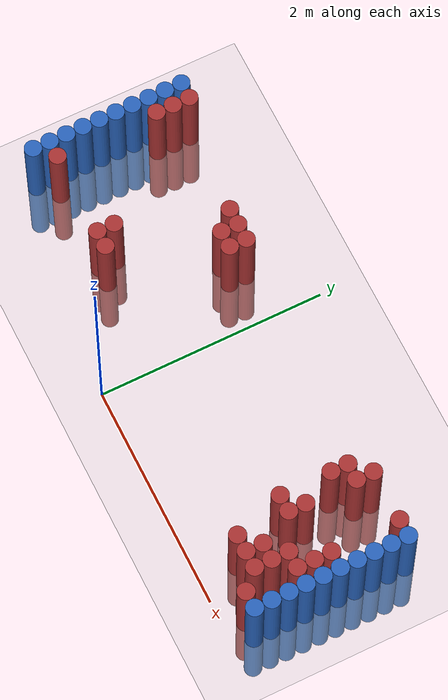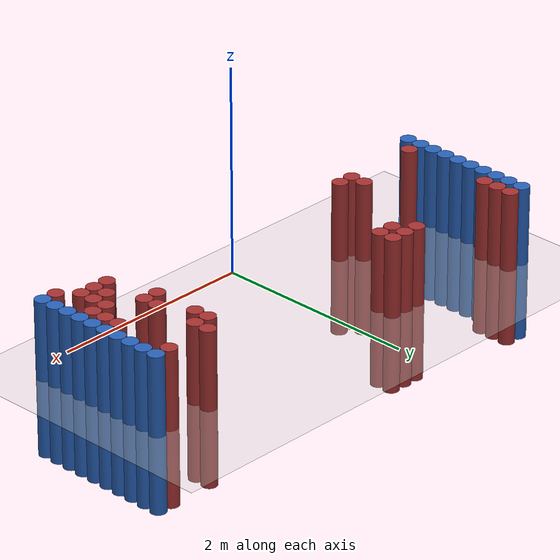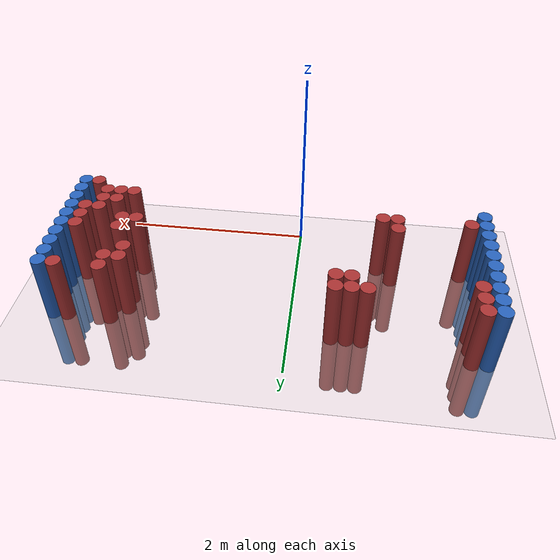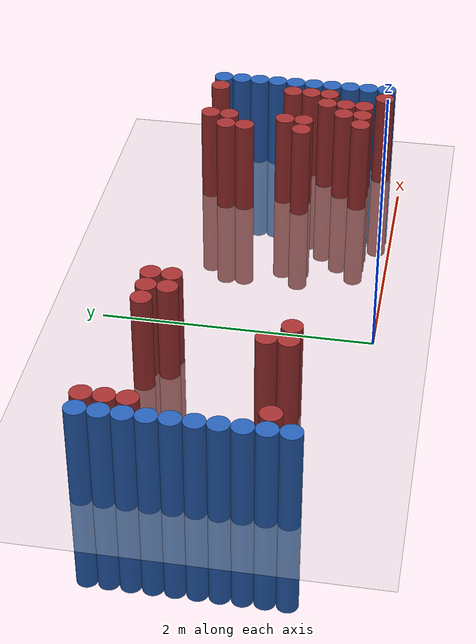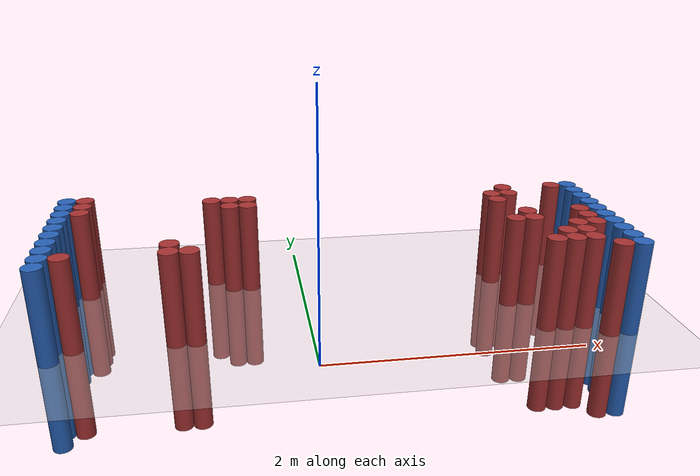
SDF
<sdf version="1.6">
 <world name="default">
  <model name="ground_plane">
   <static>1</static>
   <link name="link">
    <collision name="collision">
     <geometry><plane><normal>0 0 1</normal><size>100 100</size></plane></geometry>
     <surface><friction><ode><mu>100</mu><mu2>50</mu2></ode></friction></surface>
    </collision>
    <visual name="visual">
     <cast_shadows>0</cast_shadows>
     <geometry><plane><normal>0 0 1</normal><size>100 100</size></plane></geometry>
     <material>
      <script><uri>file://media/materials/scripts/gazebo.material</uri><name>Gazebo/Grey</name></script>
     </material>
    </visual>
   </link>
  </model>
  <model name="unit_cylinder_97">
   <static>1</static>
   <pose>-1.925000 0.325000 0.000000 0.000000 0.000000 0.000000</pose>
   <link name="link">
    <inertial>
     <mass>1</mass>
     <inertia><ixx>0.145833</ixx><ixy>0</ixy><ixz>0</ixz><iyy>0.145833</iyy><iyz>0</iyz><izz>0.125</izz></inertia>
    </inertial>
    <collision name="collision">
     <geometry><cylinder><radius>0.075000</radius><length>1.5</length></cylinder></geometry>
    </collision>
    <visual name="visual">
     <geometry><cylinder><radius>0.075000</radius><length>1.5</length></cylinder></geometry>
     <material>
      <ambient>0.152000 0.379000 0.720000 1</ambient>
      <diffuse>0.152000 0.379000 0.720000 1</diffuse>
     </material>
     <material>
      <script><name>Gazebo/Grey</name><uri>file://media/materials/scripts/gazebo.material</uri></script>
     </material>
    </visual>
   </link>
  </model>
  <model name="unit_cylinder_98">
   <static>1</static>
   <pose>-1.925000 0.475000 0.000000 0.000000 0.000000 0.000000</pose>
   <link name="link">
    <inertial>
     <mass>1</mass>
     <inertia><ixx>0.145833</ixx><ixy>0</ixy><ixz>0</ixz><iyy>0.145833</iyy><iyz>0</iyz><izz>0.125</izz></inertia>
    </inertial>
    <collision name="collision">
     <geometry><cylinder><radius>0.075000</radius><length>1.5</length></cylinder></geometry>
    </collision>
    <visual name="visual">
     <geometry><cylinder><radius>0.075000</radius><length>1.5</length></cylinder></geometry>
     <material>
      <ambient>0.152000 0.379000 0.720000 1</ambient>
      <diffuse>0.152000 0.379000 0.720000 1</diffuse>
     </material>
     <material>
      <script><name>Gazebo/Grey</name><uri>file://media/materials/scripts/gazebo.material</uri></script>
     </material>
    </visual>
   </link>
  </model>
  <model name="unit_cylinder_99">
   <static>1</static>
   <pose>-1.925000 0.625000 0.000000 0.000000 0.000000 0.000000</pose>
   <link name="link">
    <inertial>
     <mass>1</mass>
     <inertia><ixx>0.145833</ixx><ixy>0</ixy><ixz>0</ixz><iyy>0.145833</iyy><iyz>0</iyz><izz>0.125</izz></inertia>
    </inertial>
    <collision name="collision">
     <geometry><cylinder><radius>0.075000</radius><length>1.5</length></cylinder></geometry>
    </collision>
    <visual name="visual">
     <geometry><cylinder><radius>0.075000</radius><length>1.5</length></cylinder></geometry>
     <material>
      <ambient>0.152000 0.379000 0.720000 1</ambient>
      <diffuse>0.152000 0.379000 0.720000 1</diffuse>
     </material>
     <material>
      <script><name>Gazebo/Grey</name><uri>file://media/materials/scripts/gazebo.material</uri></script>
     </material>
    </visual>
   </link>
  </model>
  <model name="unit_cylinder_100">
   <static>1</static>
   <pose>-1.925000 0.775000 0.000000 0.000000 0.000000 0.000000</pose>
   <link name="link">
    <inertial>
     <mass>1</mass>
     <inertia><ixx>0.145833</ixx><ixy>0</ixy><ixz>0</ixz><iyy>0.145833</iyy><iyz>0</iyz><izz>0.125</izz></inertia>
    </inertial>
    <collision name="collision">
     <geometry><cylinder><radius>0.075000</radius><length>1.5</length></cylinder></geometry>
    </collision>
    <visual name="visual">
     <geometry><cylinder><radius>0.075000</radius><length>1.5</length></cylinder></geometry>
     <material>
      <ambient>0.152000 0.379000 0.720000 1</ambient>
      <diffuse>0.152000 0.379000 0.720000 1</diffuse>
     </material>
     <material>
      <script><name>Gazebo/Grey</name><uri>file://media/materials/scripts/gazebo.material</uri></script>
     </material>
    </visual>
   </link>
  </model>
  <model name="unit_cylinder_101">
   <static>1</static>
   <pose>-1.925000 0.925000 0.000000 0.000000 0.000000 0.000000</pose>
   <link name="link">
    <inertial>
     <mass>1</mass>
     <inertia><ixx>0.145833</ixx><ixy>0</ixy><ixz>0</ixz><iyy>0.145833</iyy><iyz>0</iyz><izz>0.125</izz></inertia>
    </inertial>
    <collision name="collision">
     <geometry><cylinder><radius>0.075000</radius><length>1.5</length></cylinder></geometry>
    </collision>
    <visual name="visual">
     <geometry><cylinder><radius>0.075000</radius><length>1.5</length></cylinder></geometry>
     <material>
      <ambient>0.152000 0.379000 0.720000 1</ambient>
      <diffuse>0.152000 0.379000 0.720000 1</diffuse>
     </material>
     <material>
      <script><name>Gazebo/Grey</name><uri>file://media/materials/scripts/gazebo.material</uri></script>
     </material>
    </visual>
   </link>
  </model>
  <model name="unit_cylinder_102">
   <static>1</static>
   <pose>-1.925000 1.075000 0.000000 0.000000 0.000000 0.000000</pose>
   <link name="link">
    <inertial>
     <mass>1</mass>
     <inertia><ixx>0.145833</ixx><ixy>0</ixy><ixz>0</ixz><iyy>0.145833</iyy><iyz>0</iyz><izz>0.125</izz></inertia>
    </inertial>
    <collision name="collision">
     <geometry><cylinder><radius>0.075000</radius><length>1.5</length></cylinder></geometry>
    </collision>
    <visual name="visual">
     <geometry><cylinder><radius>0.075000</radius><length>1.5</length></cylinder></geometry>
     <material>
      <ambient>0.152000 0.379000 0.720000 1</ambient>
      <diffuse>0.152000 0.379000 0.720000 1</diffuse>
     </material>
     <material>
      <script><name>Gazebo/Grey</name><uri>file://media/materials/scripts/gazebo.material</uri></script>
     </material>
    </visual>
   </link>
  </model>
  <model name="unit_cylinder_103">
   <static>1</static>
   <pose>-1.925000 1.225000 0.000000 0.000000 0.000000 0.000000</pose>
   <link name="link">
    <inertial>
     <mass>1</mass>
     <inertia><ixx>0.145833</ixx><ixy>0</ixy><ixz>0</ixz><iyy>0.145833</iyy><iyz>0</iyz><izz>0.125</izz></inertia>
    </inertial>
    <collision name="collision">
     <geometry><cylinder><radius>0.075000</radius><length>1.5</length></cylinder></geometry>
    </collision>
    <visual name="visual">
     <geometry><cylinder><radius>0.075000</radius><length>1.5</length></cylinder></geometry>
     <material>
      <ambient>0.152000 0.379000 0.720000 1</ambient>
      <diffuse>0.152000 0.379000 0.720000 1</diffuse>
     </material>
     <material>
      <script><name>Gazebo/Grey</name><uri>file://media/materials/scripts/gazebo.material</uri></script>
     </material>
    </visual>
   </link>
  </model>
  <model name="unit_cylinder_104">
   <static>1</static>
   <pose>-1.925000 1.375000 0.000000 0.000000 0.000000 0.000000</pose>
   <link name="link">
    <inertial>
     <mass>1</mass>
     <inertia><ixx>0.145833</ixx><ixy>0</ixy><ixz>0</ixz><iyy>0.145833</iyy><iyz>0</iyz><izz>0.125</izz></inertia>
    </inertial>
    <collision name="collision">
     <geometry><cylinder><radius>0.075000</radius><length>1.5</length></cylinder></geometry>
    </collision>
    <visual name="visual">
     <geometry><cylinder><radius>0.075000</radius><length>1.5</length></cylinder></geometry>
     <material>
      <ambient>0.152000 0.379000 0.720000 1</ambient>
      <diffuse>0.152000 0.379000 0.720000 1</diffuse>
     </material>
     <material>
      <script><name>Gazebo/Grey</name><uri>file://media/materials/scripts/gazebo.material</uri></script>
     </material>
    </visual>
   </link>
  </model>
  <model name="unit_cylinder_105">
   <static>1</static>
   <pose>-1.925000 1.525000 0.000000 0.000000 0.000000 0.000000</pose>
   <link name="link">
    <inertial>
     <mass>1</mass>
     <inertia><ixx>0.145833</ixx><ixy>0</ixy><ixz>0</ixz><iyy>0.145833</iyy><iyz>0</iyz><izz>0.125</izz></inertia>
    </inertial>
    <collision name="collision">
     <geometry><cylinder><radius>0.075000</radius><length>1.5</length></cylinder></geometry>
    </collision>
    <visual name="visual">
     <geometry><cylinder><radius>0.075000</radius><length>1.5</length></cylinder></geometry>
     <material>
      <ambient>0.152000 0.379000 0.720000 1</ambient>
      <diffuse>0.152000 0.379000 0.720000 1</diffuse>
     </material>
     <material>
      <script><name>Gazebo/Grey</name><uri>file://media/materials/scripts/gazebo.material</uri></script>
     </material>
    </visual>
   </link>
  </model>
  <model name="unit_cylinder_106">
   <static>1</static>
   <pose>-1.925000 1.675000 0.000000 0.000000 0.000000 0.000000</pose>
   <link name="link">
    <inertial>
     <mass>1</mass>
     <inertia><ixx>0.145833</ixx><ixy>0</ixy><ixz>0</ixz><iyy>0.145833</iyy><iyz>0</iyz><izz>0.125</izz></inertia>
    </inertial>
    <collision name="collision">
     <geometry><cylinder><radius>0.075000</radius><length>1.5</length></cylinder></geometry>
    </collision>
    <visual name="visual">
     <geometry><cylinder><radius>0.075000</radius><length>1.5</length></cylinder></geometry>
     <material>
      <ambient>0.152000 0.379000 0.720000 1</ambient>
      <diffuse>0.152000 0.379000 0.720000 1</diffuse>
     </material>
     <material>
      <script><name>Gazebo/Grey</name><uri>file://media/materials/scripts/gazebo.material</uri></script>
     </material>
    </visual>
   </link>
  </model>
  <model name="unit_cylinder_126">
   <static>1</static>
   <pose>-1.775000 0.475000 0.000000 0.000000 0.000000 0.000000</pose>
   <link name="link">
    <inertial>
     <mass>1</mass>
     <inertia><ixx>0.145833</ixx><ixy>0</ixy><ixz>0</ixz><iyy>0.145833</iyy><iyz>0</iyz><izz>0.125</izz></inertia>
    </inertial>
    <collision name="collision">
     <geometry><cylinder><radius>0.075000</radius><length>1.5</length></cylinder></geometry>
    </collision>
    <visual name="visual">
     <geometry><cylinder><radius>0.075000</radius><length>1.5</length></cylinder></geometry>
     <material>
      <ambient>0.648000 0.192000 0.192000 1</ambient>
      <diffuse>0.648000 0.192000 0.192000 1</diffuse>
     </material>
     <material>
      <script><name>Gazebo/Grey</name><uri>file://media/materials/scripts/gazebo.material</uri></script>
     </material>
    </visual>
   </link>
  </model>
  <model name="unit_cylinder_127">
   <static>1</static>
   <pose>-1.775000 1.375000 0.000000 0.000000 0.000000 0.000000</pose>
   <link name="link">
    <inertial>
     <mass>1</mass>
     <inertia><ixx>0.145833</ixx><ixy>0</ixy><ixz>0</ixz><iyy>0.145833</iyy><iyz>0</iyz><izz>0.125</izz></inertia>
    </inertial>
    <collision name="collision">
     <geometry><cylinder><radius>0.075000</radius><length>1.5</length></cylinder></geometry>
    </collision>
    <visual name="visual">
     <geometry><cylinder><radius>0.075000</radius><length>1.5</length></cylinder></geometry>
     <material>
      <ambient>0.648000 0.192000 0.192000 1</ambient>
      <diffuse>0.648000 0.192000 0.192000 1</diffuse>
     </material>
     <material>
      <script><name>Gazebo/Grey</name><uri>file://media/materials/scripts/gazebo.material</uri></script>
     </material>
    </visual>
   </link>
  </model>
  <model name="unit_cylinder_128">
   <static>1</static>
   <pose>-1.775000 1.525000 0.000000 0.000000 0.000000 0.000000</pose>
   <link name="link">
    <inertial>
     <mass>1</mass>
     <inertia><ixx>0.145833</ixx><ixy>0</ixy><ixz>0</ixz><iyy>0.145833</iyy><iyz>0</iyz><izz>0.125</izz></inertia>
    </inertial>
    <collision name="collision">
     <geometry><cylinder><radius>0.075000</radius><length>1.5</length></cylinder></geometry>
    </collision>
    <visual name="visual">
     <geometry><cylinder><radius>0.075000</radius><length>1.5</length></cylinder></geometry>
     <material>
      <ambient>0.648000 0.192000 0.192000 1</ambient>
      <diffuse>0.648000 0.192000 0.192000 1</diffuse>
     </material>
     <material>
      <script><name>Gazebo/Grey</name><uri>file://media/materials/scripts/gazebo.material</uri></script>
     </material>
    </visual>
   </link>
  </model>
  <model name="unit_cylinder_129">
   <static>1</static>
   <pose>-1.775000 1.675000 0.000000 0.000000 0.000000 0.000000</pose>
   <link name="link">
    <inertial>
     <mass>1</mass>
     <inertia><ixx>0.145833</ixx><ixy>0</ixy><ixz>0</ixz><iyy>0.145833</iyy><iyz>0</iyz><izz>0.125</izz></inertia>
    </inertial>
    <collision name="collision">
     <geometry><cylinder><radius>0.075000</radius><length>1.5</length></cylinder></geometry>
    </collision>
    <visual name="visual">
     <geometry><cylinder><radius>0.075000</radius><length>1.5</length></cylinder></geometry>
     <material>
      <ambient>0.648000 0.192000 0.192000 1</ambient>
      <diffuse>0.648000 0.192000 0.192000 1</diffuse>
     </material>
     <material>
      <script><name>Gazebo/Grey</name><uri>file://media/materials/scripts/gazebo.material</uri></script>
     </material>
    </visual>
   </link>
  </model>
  <model name="unit_cylinder_161">
   <static>1</static>
   <pose>-1.025000 0.475000 0.000000 0.000000 0.000000 0.000000</pose>
   <link name="link">
    <inertial>
     <mass>1</mass>
     <inertia><ixx>0.145833</ixx><ixy>0</ixy><ixz>0</ixz><iyy>0.145833</iyy><iyz>0</iyz><izz>0.125</izz></inertia>
    </inertial>
    <collision name="collision">
     <geometry><cylinder><radius>0.075000</radius><length>1.5</length></cylinder></geometry>
    </collision>
    <visual name="visual">
     <geometry><cylinder><radius>0.075000</radius><length>1.5</length></cylinder></geometry>
     <material>
      <ambient>0.648000 0.192000 0.192000 1</ambient>
      <diffuse>0.648000 0.192000 0.192000 1</diffuse>
     </material>
     <material>
      <script><name>Gazebo/Grey</name><uri>file://media/materials/scripts/gazebo.material</uri></script>
     </material>
    </visual>
   </link>
  </model>
  <model name="unit_cylinder_162">
   <static>1</static>
   <pose>-1.025000 0.625000 0.000000 0.000000 0.000000 0.000000</pose>
   <link name="link">
    <inertial>
     <mass>1</mass>
     <inertia><ixx>0.145833</ixx><ixy>0</ixy><ixz>0</ixz><iyy>0.145833</iyy><iyz>0</iyz><izz>0.125</izz></inertia>
    </inertial>
    <collision name="collision">
     <geometry><cylinder><radius>0.075000</radius><length>1.5</length></cylinder></geometry>
    </collision>
    <visual name="visual">
     <geometry><cylinder><radius>0.075000</radius><length>1.5</length></cylinder></geometry>
     <material>
      <ambient>0.648000 0.192000 0.192000 1</ambient>
      <diffuse>0.648000 0.192000 0.192000 1</diffuse>
     </material>
     <material>
      <script><name>Gazebo/Grey</name><uri>file://media/materials/scripts/gazebo.material</uri></script>
     </material>
    </visual>
   </link>
  </model>
  <model name="unit_cylinder_171">
   <static>1</static>
   <pose>-0.875000 0.475000 0.000000 0.000000 0.000000 0.000000</pose>
   <link name="link">
    <inertial>
     <mass>1</mass>
     <inertia><ixx>0.145833</ixx><ixy>0</ixy><ixz>0</ixz><iyy>0.145833</iyy><iyz>0</iyz><izz>0.125</izz></inertia>
    </inertial>
    <collision name="collision">
     <geometry><cylinder><radius>0.075000</radius><length>1.5</length></cylinder></geometry>
    </collision>
    <visual name="visual">
     <geometry><cylinder><radius>0.075000</radius><length>1.5</length></cylinder></geometry>
     <material>
      <ambient>0.648000 0.192000 0.192000 1</ambient>
      <diffuse>0.648000 0.192000 0.192000 1</diffuse>
     </material>
     <material>
      <script><name>Gazebo/Grey</name><uri>file://media/materials/scripts/gazebo.material</uri></script>
     </material>
    </visual>
   </link>
  </model>
  <model name="unit_cylinder_178">
   <static>1</static>
   <pose>-0.725000 1.525000 0.000000 0.000000 0.000000 0.000000</pose>
   <link name="link">
    <inertial>
     <mass>1</mass>
     <inertia><ixx>0.145833</ixx><ixy>0</ixy><ixz>0</ixz><iyy>0.145833</iyy><iyz>0</iyz><izz>0.125</izz></inertia>
    </inertial>
    <collision name="collision">
     <geometry><cylinder><radius>0.075000</radius><length>1.5</length></cylinder></geometry>
    </collision>
    <visual name="visual">
     <geometry><cylinder><radius>0.075000</radius><length>1.5</length></cylinder></geometry>
     <material>
      <ambient>0.648000 0.192000 0.192000 1</ambient>
      <diffuse>0.648000 0.192000 0.192000 1</diffuse>
     </material>
     <material>
      <script><name>Gazebo/Grey</name><uri>file://media/materials/scripts/gazebo.material</uri></script>
     </material>
    </visual>
   </link>
  </model>
  <model name="unit_cylinder_183">
   <static>1</static>
   <pose>-0.575000 1.375000 0.000000 0.000000 0.000000 0.000000</pose>
   <link name="link">
    <inertial>
     <mass>1</mass>
     <inertia><ixx>0.145833</ixx><ixy>0</ixy><ixz>0</ixz><iyy>0.145833</iyy><iyz>0</iyz><izz>0.125</izz></inertia>
    </inertial>
    <collision name="collision">
     <geometry><cylinder><radius>0.075000</radius><length>1.5</length></cylinder></geometry>
    </collision>
    <visual name="visual">
     <geometry><cylinder><radius>0.075000</radius><length>1.5</length></cylinder></geometry>
     <material>
      <ambient>0.648000 0.192000 0.192000 1</ambient>
      <diffuse>0.648000 0.192000 0.192000 1</diffuse>
     </material>
     <material>
      <script><name>Gazebo/Grey</name><uri>file://media/materials/scripts/gazebo.material</uri></script>
     </material>
    </visual>
   </link>
  </model>
  <model name="unit_cylinder_184">
   <static>1</static>
   <pose>-0.575000 1.525000 0.000000 0.000000 0.000000 0.000000</pose>
   <link name="link">
    <inertial>
     <mass>1</mass>
     <inertia><ixx>0.145833</ixx><ixy>0</ixy><ixz>0</ixz><iyy>0.145833</iyy><iyz>0</iyz><izz>0.125</izz></inertia>
    </inertial>
    <collision name="collision">
     <geometry><cylinder><radius>0.075000</radius><length>1.5</length></cylinder></geometry>
    </collision>
    <visual name="visual">
     <geometry><cylinder><radius>0.075000</radius><length>1.5</length></cylinder></geometry>
     <material>
      <ambient>0.648000 0.192000 0.192000 1</ambient>
      <diffuse>0.648000 0.192000 0.192000 1</diffuse>
     </material>
     <material>
      <script><name>Gazebo/Grey</name><uri>file://media/materials/scripts/gazebo.material</uri></script>
     </material>
    </visual>
   </link>
  </model>
  <model name="unit_cylinder_186">
   <static>1</static>
   <pose>-0.425000 1.375000 0.000000 0.000000 0.000000 0.000000</pose>
   <link name="link">
    <inertial>
     <mass>1</mass>
     <inertia><ixx>0.145833</ixx><ixy>0</ixy><ixz>0</ixz><iyy>0.145833</iyy><iyz>0</iyz><izz>0.125</izz></inertia>
    </inertial>
    <collision name="collision">
     <geometry><cylinder><radius>0.075000</radius><length>1.5</length></cylinder></geometry>
    </collision>
    <visual name="visual">
     <geometry><cylinder><radius>0.075000</radius><length>1.5</length></cylinder></geometry>
     <material>
      <ambient>0.648000 0.192000 0.192000 1</ambient>
      <diffuse>0.648000 0.192000 0.192000 1</diffuse>
     </material>
     <material>
      <script><name>Gazebo/Grey</name><uri>file://media/materials/scripts/gazebo.material</uri></script>
     </material>
    </visual>
   </link>
  </model>
  <model name="unit_cylinder_187">
   <static>1</static>
   <pose>-0.425000 1.525000 0.000000 0.000000 0.000000 0.000000</pose>
   <link name="link">
    <inertial>
     <mass>1</mass>
     <inertia><ixx>0.145833</ixx><ixy>0</ixy><ixz>0</ixz><iyy>0.145833</iyy><iyz>0</iyz><izz>0.125</izz></inertia>
    </inertial>
    <collision name="collision">
     <geometry><cylinder><radius>0.075000</radius><length>1.5</length></cylinder></geometry>
    </collision>
    <visual name="visual">
     <geometry><cylinder><radius>0.075000</radius><length>1.5</length></cylinder></geometry>
     <material>
      <ambient>0.648000 0.192000 0.192000 1</ambient>
      <diffuse>0.648000 0.192000 0.192000 1</diffuse>
     </material>
     <material>
      <script><name>Gazebo/Grey</name><uri>file://media/materials/scripts/gazebo.material</uri></script>
     </material>
    </visual>
   </link>
  </model>
  <model name="unit_cylinder_211">
   <static>1</static>
   <pose>1.675000 0.775000 0.000000 0.000000 0.000000 0.000000</pose>
   <link name="link">
    <inertial>
     <mass>1</mass>
     <inertia><ixx>0.145833</ixx><ixy>0</ixy><ixz>0</ixz><iyy>0.145833</iyy><iyz>0</iyz><izz>0.125</izz></inertia>
    </inertial>
    <collision name="collision">
     <geometry><cylinder><radius>0.075000</radius><length>1.5</length></cylinder></geometry>
    </collision>
    <visual name="visual">
     <geometry><cylinder><radius>0.075000</radius><length>1.5</length></cylinder></geometry>
     <material>
      <ambient>0.648000 0.192000 0.192000 1</ambient>
      <diffuse>0.648000 0.192000 0.192000 1</diffuse>
     </material>
     <material>
      <script><name>Gazebo/Grey</name><uri>file://media/materials/scripts/gazebo.material</uri></script>
     </material>
    </visual>
   </link>
  </model>
  <model name="unit_cylinder_212">
   <static>1</static>
   <pose>1.675000 1.225000 0.000000 0.000000 0.000000 0.000000</pose>
   <link name="link">
    <inertial>
     <mass>1</mass>
     <inertia><ixx>0.145833</ixx><ixy>0</ixy><ixz>0</ixz><iyy>0.145833</iyy><iyz>0</iyz><izz>0.125</izz></inertia>
    </inertial>
    <collision name="collision">
     <geometry><cylinder><radius>0.075000</radius><length>1.5</length></cylinder></geometry>
    </collision>
    <visual name="visual">
     <geometry><cylinder><radius>0.075000</radius><length>1.5</length></cylinder></geometry>
     <material>
      <ambient>0.648000 0.192000 0.192000 1</ambient>
      <diffuse>0.648000 0.192000 0.192000 1</diffuse>
     </material>
     <material>
      <script><name>Gazebo/Grey</name><uri>file://media/materials/scripts/gazebo.material</uri></script>
     </material>
    </visual>
   </link>
  </model>
  <model name="unit_cylinder_213">
   <static>1</static>
   <pose>1.675000 1.375000 0.000000 0.000000 0.000000 0.000000</pose>
   <link name="link">
    <inertial>
     <mass>1</mass>
     <inertia><ixx>0.145833</ixx><ixy>0</ixy><ixz>0</ixz><iyy>0.145833</iyy><iyz>0</iyz><izz>0.125</izz></inertia>
    </inertial>
    <collision name="collision">
     <geometry><cylinder><radius>0.075000</radius><length>1.5</length></cylinder></geometry>
    </collision>
    <visual name="visual">
     <geometry><cylinder><radius>0.075000</radius><length>1.5</length></cylinder></geometry>
     <material>
      <ambient>0.648000 0.192000 0.192000 1</ambient>
      <diffuse>0.648000 0.192000 0.192000 1</diffuse>
     </material>
     <material>
      <script><name>Gazebo/Grey</name><uri>file://media/materials/scripts/gazebo.material</uri></script>
     </material>
    </visual>
   </link>
  </model>
  <model name="unit_cylinder_222">
   <static>1</static>
   <pose>1.825000 0.325000 0.000000 0.000000 0.000000 0.000000</pose>
   <link name="link">
    <inertial>
     <mass>1</mass>
     <inertia><ixx>0.145833</ixx><ixy>0</ixy><ixz>0</ixz><iyy>0.145833</iyy><iyz>0</iyz><izz>0.125</izz></inertia>
    </inertial>
    <collision name="collision">
     <geometry><cylinder><radius>0.075000</radius><length>1.5</length></cylinder></geometry>
    </collision>
    <visual name="visual">
     <geometry><cylinder><radius>0.075000</radius><length>1.5</length></cylinder></geometry>
     <material>
      <ambient>0.648000 0.192000 0.192000 1</ambient>
      <diffuse>0.648000 0.192000 0.192000 1</diffuse>
     </material>
     <material>
      <script><name>Gazebo/Grey</name><uri>file://media/materials/scripts/gazebo.material</uri></script>
     </material>
    </visual>
   </link>
  </model>
  <model name="unit_cylinder_223">
   <static>1</static>
   <pose>1.825000 0.775000 0.000000 0.000000 0.000000 0.000000</pose>
   <link name="link">
    <inertial>
     <mass>1</mass>
     <inertia><ixx>0.145833</ixx><ixy>0</ixy><ixz>0</ixz><iyy>0.145833</iyy><iyz>0</iyz><izz>0.125</izz></inertia>
    </inertial>
    <collision name="collision">
     <geometry><cylinder><radius>0.075000</radius><length>1.5</length></cylinder></geometry>
    </collision>
    <visual name="visual">
     <geometry><cylinder><radius>0.075000</radius><length>1.5</length></cylinder></geometry>
     <material>
      <ambient>0.648000 0.192000 0.192000 1</ambient>
      <diffuse>0.648000 0.192000 0.192000 1</diffuse>
     </material>
     <material>
      <script><name>Gazebo/Grey</name><uri>file://media/materials/scripts/gazebo.material</uri></script>
     </material>
    </visual>
   </link>
  </model>
  <model name="unit_cylinder_224">
   <static>1</static>
   <pose>1.825000 0.925000 0.000000 0.000000 0.000000 0.000000</pose>
   <link name="link">
    <inertial>
     <mass>1</mass>
     <inertia><ixx>0.145833</ixx><ixy>0</ixy><ixz>0</ixz><iyy>0.145833</iyy><iyz>0</iyz><izz>0.125</izz></inertia>
    </inertial>
    <collision name="collision">
     <geometry><cylinder><radius>0.075000</radius><length>1.5</length></cylinder></geometry>
    </collision>
    <visual name="visual">
     <geometry><cylinder><radius>0.075000</radius><length>1.5</length></cylinder></geometry>
     <material>
      <ambient>0.648000 0.192000 0.192000 1</ambient>
      <diffuse>0.648000 0.192000 0.192000 1</diffuse>
     </material>
     <material>
      <script><name>Gazebo/Grey</name><uri>file://media/materials/scripts/gazebo.material</uri></script>
     </material>
    </visual>
   </link>
  </model>
  <model name="unit_cylinder_225">
   <static>1</static>
   <pose>1.825000 1.375000 0.000000 0.000000 0.000000 0.000000</pose>
   <link name="link">
    <inertial>
     <mass>1</mass>
     <inertia><ixx>0.145833</ixx><ixy>0</ixy><ixz>0</ixz><iyy>0.145833</iyy><iyz>0</iyz><izz>0.125</izz></inertia>
    </inertial>
    <collision name="collision">
     <geometry><cylinder><radius>0.075000</radius><length>1.5</length></cylinder></geometry>
    </collision>
    <visual name="visual">
     <geometry><cylinder><radius>0.075000</radius><length>1.5</length></cylinder></geometry>
     <material>
      <ambient>0.648000 0.192000 0.192000 1</ambient>
      <diffuse>0.648000 0.192000 0.192000 1</diffuse>
     </material>
     <material>
      <script><name>Gazebo/Grey</name><uri>file://media/materials/scripts/gazebo.material</uri></script>
     </material>
    </visual>
   </link>
  </model>
  <model name="unit_cylinder_226">
   <static>1</static>
   <pose>1.825000 1.525000 0.000000 0.000000 0.000000 0.000000</pose>
   <link name="link">
    <inertial>
     <mass>1</mass>
     <inertia><ixx>0.145833</ixx><ixy>0</ixy><ixz>0</ixz><iyy>0.145833</iyy><iyz>0</iyz><izz>0.125</izz></inertia>
    </inertial>
    <collision name="collision">
     <geometry><cylinder><radius>0.075000</radius><length>1.5</length></cylinder></geometry>
    </collision>
    <visual name="visual">
     <geometry><cylinder><radius>0.075000</radius><length>1.5</length></cylinder></geometry>
     <material>
      <ambient>0.648000 0.192000 0.192000 1</ambient>
      <diffuse>0.648000 0.192000 0.192000 1</diffuse>
     </material>
     <material>
      <script><name>Gazebo/Grey</name><uri>file://media/materials/scripts/gazebo.material</uri></script>
     </material>
    </visual>
   </link>
  </model>
  <model name="unit_cylinder_238">
   <static>1</static>
   <pose>1.975000 0.325000 0.000000 0.000000 0.000000 0.000000</pose>
   <link name="link">
    <inertial>
     <mass>1</mass>
     <inertia><ixx>0.145833</ixx><ixy>0</ixy><ixz>0</ixz><iyy>0.145833</iyy><iyz>0</iyz><izz>0.125</izz></inertia>
    </inertial>
    <collision name="collision">
     <geometry><cylinder><radius>0.075000</radius><length>1.5</length></cylinder></geometry>
    </collision>
    <visual name="visual">
     <geometry><cylinder><radius>0.075000</radius><length>1.5</length></cylinder></geometry>
     <material>
      <ambient>0.648000 0.192000 0.192000 1</ambient>
      <diffuse>0.648000 0.192000 0.192000 1</diffuse>
     </material>
     <material>
      <script><name>Gazebo/Grey</name><uri>file://media/materials/scripts/gazebo.material</uri></script>
     </material>
    </visual>
   </link>
  </model>
  <model name="unit_cylinder_239">
   <static>1</static>
   <pose>1.975000 0.475000 0.000000 0.000000 0.000000 0.000000</pose>
   <link name="link">
    <inertial>
     <mass>1</mass>
     <inertia><ixx>0.145833</ixx><ixy>0</ixy><ixz>0</ixz><iyy>0.145833</iyy><iyz>0</iyz><izz>0.125</izz></inertia>
    </inertial>
    <collision name="collision">
     <geometry><cylinder><radius>0.075000</radius><length>1.5</length></cylinder></geometry>
    </collision>
    <visual name="visual">
     <geometry><cylinder><radius>0.075000</radius><length>1.5</length></cylinder></geometry>
     <material>
      <ambient>0.648000 0.192000 0.192000 1</ambient>
      <diffuse>0.648000 0.192000 0.192000 1</diffuse>
     </material>
     <material>
      <script><name>Gazebo/Grey</name><uri>file://media/materials/scripts/gazebo.material</uri></script>
     </material>
    </visual>
   </link>
  </model>
  <model name="unit_cylinder_248">
   <static>1</static>
   <pose>2.125000 0.325000 0.000000 0.000000 0.000000 0.000000</pose>
   <link name="link">
    <inertial>
     <mass>1</mass>
     <inertia><ixx>0.145833</ixx><ixy>0</ixy><ixz>0</ixz><iyy>0.145833</iyy><iyz>0</iyz><izz>0.125</izz></inertia>
    </inertial>
    <collision name="collision">
     <geometry><cylinder><radius>0.075000</radius><length>1.5</length></cylinder></geometry>
    </collision>
    <visual name="visual">
     <geometry><cylinder><radius>0.075000</radius><length>1.5</length></cylinder></geometry>
     <material>
      <ambient>0.648000 0.192000 0.192000 1</ambient>
      <diffuse>0.648000 0.192000 0.192000 1</diffuse>
     </material>
     <material>
      <script><name>Gazebo/Grey</name><uri>file://media/materials/scripts/gazebo.material</uri></script>
     </material>
    </visual>
   </link>
  </model>
  <model name="unit_cylinder_249">
   <static>1</static>
   <pose>2.125000 0.475000 0.000000 0.000000 0.000000 0.000000</pose>
   <link name="link">
    <inertial>
     <mass>1</mass>
     <inertia><ixx>0.145833</ixx><ixy>0</ixy><ixz>0</ixz><iyy>0.145833</iyy><iyz>0</iyz><izz>0.125</izz></inertia>
    </inertial>
    <collision name="collision">
     <geometry><cylinder><radius>0.075000</radius><length>1.5</length></cylinder></geometry>
    </collision>
    <visual name="visual">
     <geometry><cylinder><radius>0.075000</radius><length>1.5</length></cylinder></geometry>
     <material>
      <ambient>0.648000 0.192000 0.192000 1</ambient>
      <diffuse>0.648000 0.192000 0.192000 1</diffuse>
     </material>
     <material>
      <script><name>Gazebo/Grey</name><uri>file://media/materials/scripts/gazebo.material</uri></script>
     </material>
    </visual>
   </link>
  </model>
  <model name="unit_cylinder_250">
   <static>1</static>
   <pose>2.125000 0.625000 0.000000 0.000000 0.000000 0.000000</pose>
   <link name="link">
    <inertial>
     <mass>1</mass>
     <inertia><ixx>0.145833</ixx><ixy>0</ixy><ixz>0</ixz><iyy>0.145833</iyy><iyz>0</iyz><izz>0.125</izz></inertia>
    </inertial>
    <collision name="collision">
     <geometry><cylinder><radius>0.075000</radius><length>1.5</length></cylinder></geometry>
    </collision>
    <visual name="visual">
     <geometry><cylinder><radius>0.075000</radius><length>1.5</length></cylinder></geometry>
     <material>
      <ambient>0.648000 0.192000 0.192000 1</ambient>
      <diffuse>0.648000 0.192000 0.192000 1</diffuse>
     </material>
     <material>
      <script><name>Gazebo/Grey</name><uri>file://media/materials/scripts/gazebo.material</uri></script>
     </material>
    </visual>
   </link>
  </model>
  <model name="unit_cylinder_253">
   <static>1</static>
   <pose>2.275000 0.175000 0.000000 0.000000 0.000000 0.000000</pose>
   <link name="link">
    <inertial>
     <mass>1</mass>
     <inertia><ixx>0.145833</ixx><ixy>0</ixy><ixz>0</ixz><iyy>0.145833</iyy><iyz>0</iyz><izz>0.125</izz></inertia>
    </inertial>
    <collision name="collision">
     <geometry><cylinder><radius>0.075000</radius><length>1.5</length></cylinder></geometry>
    </collision>
    <visual name="visual">
     <geometry><cylinder><radius>0.075000</radius><length>1.5</length></cylinder></geometry>
     <material>
      <ambient>0.648000 0.192000 0.192000 1</ambient>
      <diffuse>0.648000 0.192000 0.192000 1</diffuse>
     </material>
     <material>
      <script><name>Gazebo/Grey</name><uri>file://media/materials/scripts/gazebo.material</uri></script>
     </material>
    </visual>
   </link>
  </model>
  <model name="unit_cylinder_254">
   <static>1</static>
   <pose>2.275000 0.625000 0.000000 0.000000 0.000000 0.000000</pose>
   <link name="link">
    <inertial>
     <mass>1</mass>
     <inertia><ixx>0.145833</ixx><ixy>0</ixy><ixz>0</ixz><iyy>0.145833</iyy><iyz>0</iyz><izz>0.125</izz></inertia>
    </inertial>
    <collision name="collision">
     <geometry><cylinder><radius>0.075000</radius><length>1.5</length></cylinder></geometry>
    </collision>
    <visual name="visual">
     <geometry><cylinder><radius>0.075000</radius><length>1.5</length></cylinder></geometry>
     <material>
      <ambient>0.648000 0.192000 0.192000 1</ambient>
      <diffuse>0.648000 0.192000 0.192000 1</diffuse>
     </material>
     <material>
      <script><name>Gazebo/Grey</name><uri>file://media/materials/scripts/gazebo.material</uri></script>
     </material>
    </visual>
   </link>
  </model>
  <model name="unit_cylinder_255">
   <static>1</static>
   <pose>2.275000 0.775000 0.000000 0.000000 0.000000 0.000000</pose>
   <link name="link">
    <inertial>
     <mass>1</mass>
     <inertia><ixx>0.145833</ixx><ixy>0</ixy><ixz>0</ixz><iyy>0.145833</iyy><iyz>0</iyz><izz>0.125</izz></inertia>
    </inertial>
    <collision name="collision">
     <geometry><cylinder><radius>0.075000</radius><length>1.5</length></cylinder></geometry>
    </collision>
    <visual name="visual">
     <geometry><cylinder><radius>0.075000</radius><length>1.5</length></cylinder></geometry>
     <material>
      <ambient>0.648000 0.192000 0.192000 1</ambient>
      <diffuse>0.648000 0.192000 0.192000 1</diffuse>
     </material>
     <material>
      <script><name>Gazebo/Grey</name><uri>file://media/materials/scripts/gazebo.material</uri></script>
     </material>
    </visual>
   </link>
  </model>
  <model name="unit_cylinder_256">
   <static>1</static>
   <pose>2.275000 0.925000 0.000000 0.000000 0.000000 0.000000</pose>
   <link name="link">
    <inertial>
     <mass>1</mass>
     <inertia><ixx>0.145833</ixx><ixy>0</ixy><ixz>0</ixz><iyy>0.145833</iyy><iyz>0</iyz><izz>0.125</izz></inertia>
    </inertial>
    <collision name="collision">
     <geometry><cylinder><radius>0.075000</radius><length>1.5</length></cylinder></geometry>
    </collision>
    <visual name="visual">
     <geometry><cylinder><radius>0.075000</radius><length>1.5</length></cylinder></geometry>
     <material>
      <ambient>0.648000 0.192000 0.192000 1</ambient>
      <diffuse>0.648000 0.192000 0.192000 1</diffuse>
     </material>
     <material>
      <script><name>Gazebo/Grey</name><uri>file://media/materials/scripts/gazebo.material</uri></script>
     </material>
    </visual>
   </link>
  </model>
  <model name="unit_cylinder_257">
   <static>1</static>
   <pose>2.275000 1.525000 0.000000 0.000000 0.000000 0.000000</pose>
   <link name="link">
    <inertial>
     <mass>1</mass>
     <inertia><ixx>0.145833</ixx><ixy>0</ixy><ixz>0</ixz><iyy>0.145833</iyy><iyz>0</iyz><izz>0.125</izz></inertia>
    </inertial>
    <collision name="collision">
     <geometry><cylinder><radius>0.075000</radius><length>1.5</length></cylinder></geometry>
    </collision>
    <visual name="visual">
     <geometry><cylinder><radius>0.075000</radius><length>1.5</length></cylinder></geometry>
     <material>
      <ambient>0.648000 0.192000 0.192000 1</ambient>
      <diffuse>0.648000 0.192000 0.192000 1</diffuse>
     </material>
     <material>
      <script><name>Gazebo/Grey</name><uri>file://media/materials/scripts/gazebo.material</uri></script>
     </material>
    </visual>
   </link>
  </model>
  <model name="unit_cylinder_266">
   <static>1</static>
   <pose>2.425000 0.175000 0.000000 0.000000 0.000000 0.000000</pose>
   <link name="link">
    <inertial>
     <mass>1</mass>
     <inertia><ixx>0.145833</ixx><ixy>0</ixy><ixz>0</ixz><iyy>0.145833</iyy><iyz>0</iyz><izz>0.125</izz></inertia>
    </inertial>
    <collision name="collision">
     <geometry><cylinder><radius>0.075000</radius><length>1.5</length></cylinder></geometry>
    </collision>
    <visual name="visual">
     <geometry><cylinder><radius>0.075000</radius><length>1.5</length></cylinder></geometry>
     <material>
      <ambient>0.152000 0.379000 0.720000 1</ambient>
      <diffuse>0.152000 0.379000 0.720000 1</diffuse>
     </material>
     <material>
      <script><name>Gazebo/Grey</name><uri>file://media/materials/scripts/gazebo.material</uri></script>
     </material>
    </visual>
   </link>
  </model>
  <model name="unit_cylinder_267">
   <static>1</static>
   <pose>2.425000 0.325000 0.000000 0.000000 0.000000 0.000000</pose>
   <link name="link">
    <inertial>
     <mass>1</mass>
     <inertia><ixx>0.145833</ixx><ixy>0</ixy><ixz>0</ixz><iyy>0.145833</iyy><iyz>0</iyz><izz>0.125</izz></inertia>
    </inertial>
    <collision name="collision">
     <geometry><cylinder><radius>0.075000</radius><length>1.5</length></cylinder></geometry>
    </collision>
    <visual name="visual">
     <geometry><cylinder><radius>0.075000</radius><length>1.5</length></cylinder></geometry>
     <material>
      <ambient>0.152000 0.379000 0.720000 1</ambient>
      <diffuse>0.152000 0.379000 0.720000 1</diffuse>
     </material>
     <material>
      <script><name>Gazebo/Grey</name><uri>file://media/materials/scripts/gazebo.material</uri></script>
     </material>
    </visual>
   </link>
  </model>
  <model name="unit_cylinder_268">
   <static>1</static>
   <pose>2.425000 0.475000 0.000000 0.000000 0.000000 0.000000</pose>
   <link name="link">
    <inertial>
     <mass>1</mass>
     <inertia><ixx>0.145833</ixx><ixy>0</ixy><ixz>0</ixz><iyy>0.145833</iyy><iyz>0</iyz><izz>0.125</izz></inertia>
    </inertial>
    <collision name="collision">
     <geometry><cylinder><radius>0.075000</radius><length>1.5</length></cylinder></geometry>
    </collision>
    <visual name="visual">
     <geometry><cylinder><radius>0.075000</radius><length>1.5</length></cylinder></geometry>
     <material>
      <ambient>0.152000 0.379000 0.720000 1</ambient>
      <diffuse>0.152000 0.379000 0.720000 1</diffuse>
     </material>
     <material>
      <script><name>Gazebo/Grey</name><uri>file://media/materials/scripts/gazebo.material</uri></script>
     </material>
    </visual>
   </link>
  </model>
  <model name="unit_cylinder_269">
   <static>1</static>
   <pose>2.425000 0.625000 0.000000 0.000000 0.000000 0.000000</pose>
   <link name="link">
    <inertial>
     <mass>1</mass>
     <inertia><ixx>0.145833</ixx><ixy>0</ixy><ixz>0</ixz><iyy>0.145833</iyy><iyz>0</iyz><izz>0.125</izz></inertia>
    </inertial>
    <collision name="collision">
     <geometry><cylinder><radius>0.075000</radius><length>1.5</length></cylinder></geometry>
    </collision>
    <visual name="visual">
     <geometry><cylinder><radius>0.075000</radius><length>1.5</length></cylinder></geometry>
     <material>
      <ambient>0.152000 0.379000 0.720000 1</ambient>
      <diffuse>0.152000 0.379000 0.720000 1</diffuse>
     </material>
     <material>
      <script><name>Gazebo/Grey</name><uri>file://media/materials/scripts/gazebo.material</uri></script>
     </material>
    </visual>
   </link>
  </model>
  <model name="unit_cylinder_270">
   <static>1</static>
   <pose>2.425000 0.775000 0.000000 0.000000 0.000000 0.000000</pose>
   <link name="link">
    <inertial>
     <mass>1</mass>
     <inertia><ixx>0.145833</ixx><ixy>0</ixy><ixz>0</ixz><iyy>0.145833</iyy><iyz>0</iyz><izz>0.125</izz></inertia>
    </inertial>
    <collision name="collision">
     <geometry><cylinder><radius>0.075000</radius><length>1.5</length></cylinder></geometry>
    </collision>
    <visual name="visual">
     <geometry><cylinder><radius>0.075000</radius><length>1.5</length></cylinder></geometry>
     <material>
      <ambient>0.152000 0.379000 0.720000 1</ambient>
      <diffuse>0.152000 0.379000 0.720000 1</diffuse>
     </material>
     <material>
      <script><name>Gazebo/Grey</name><uri>file://media/materials/scripts/gazebo.material</uri></script>
     </material>
    </visual>
   </link>
  </model>
  <model name="unit_cylinder_271">
   <static>1</static>
   <pose>2.425000 0.925000 0.000000 0.000000 0.000000 0.000000</pose>
   <link name="link">
    <inertial>
     <mass>1</mass>
     <inertia><ixx>0.145833</ixx><ixy>0</ixy><ixz>0</ixz><iyy>0.145833</iyy><iyz>0</iyz><izz>0.125</izz></inertia>
    </inertial>
    <collision name="collision">
     <geometry><cylinder><radius>0.075000</radius><length>1.5</length></cylinder></geometry>
    </collision>
    <visual name="visual">
     <geometry><cylinder><radius>0.075000</radius><length>1.5</length></cylinder></geometry>
     <material>
      <ambient>0.152000 0.379000 0.720000 1</ambient>
      <diffuse>0.152000 0.379000 0.720000 1</diffuse>
     </material>
     <material>
      <script><name>Gazebo/Grey</name><uri>file://media/materials/scripts/gazebo.material</uri></script>
     </material>
    </visual>
   </link>
  </model>
  <model name="unit_cylinder_272">
   <static>1</static>
   <pose>2.425000 1.075000 0.000000 0.000000 0.000000 0.000000</pose>
   <link name="link">
    <inertial>
     <mass>1</mass>
     <inertia><ixx>0.145833</ixx><ixy>0</ixy><ixz>0</ixz><iyy>0.145833</iyy><iyz>0</iyz><izz>0.125</izz></inertia>
    </inertial>
    <collision name="collision">
     <geometry><cylinder><radius>0.075000</radius><length>1.5</length></cylinder></geometry>
    </collision>
    <visual name="visual">
     <geometry><cylinder><radius>0.075000</radius><length>1.5</length></cylinder></geometry>
     <material>
      <ambient>0.152000 0.379000 0.720000 1</ambient>
      <diffuse>0.152000 0.379000 0.720000 1</diffuse>
     </material>
     <material>
      <script><name>Gazebo/Grey</name><uri>file://media/materials/scripts/gazebo.material</uri></script>
     </material>
    </visual>
   </link>
  </model>
  <model name="unit_cylinder_273">
   <static>1</static>
   <pose>2.425000 1.225000 0.000000 0.000000 0.000000 0.000000</pose>
   <link name="link">
    <inertial>
     <mass>1</mass>
     <inertia><ixx>0.145833</ixx><ixy>0</ixy><ixz>0</ixz><iyy>0.145833</iyy><iyz>0</iyz><izz>0.125</izz></inertia>
    </inertial>
    <collision name="collision">
     <geometry><cylinder><radius>0.075000</radius><length>1.5</length></cylinder></geometry>
    </collision>
    <visual name="visual">
     <geometry><cylinder><radius>0.075000</radius><length>1.5</length></cylinder></geometry>
     <material>
      <ambient>0.152000 0.379000 0.720000 1</ambient>
      <diffuse>0.152000 0.379000 0.720000 1</diffuse>
     </material>
     <material>
      <script><name>Gazebo/Grey</name><uri>file://media/materials/scripts/gazebo.material</uri></script>
     </material>
    </visual>
   </link>
  </model>
  <model name="unit_cylinder_274">
   <static>1</static>
   <pose>2.425000 1.375000 0.000000 0.000000 0.000000 0.000000</pose>
   <link name="link">
    <inertial>
     <mass>1</mass>
     <inertia><ixx>0.145833</ixx><ixy>0</ixy><ixz>0</ixz><iyy>0.145833</iyy><iyz>0</iyz><izz>0.125</izz></inertia>
    </inertial>
    <collision name="collision">
     <geometry><cylinder><radius>0.075000</radius><length>1.5</length></cylinder></geometry>
    </collision>
    <visual name="visual">
     <geometry><cylinder><radius>0.075000</radius><length>1.5</length></cylinder></geometry>
     <material>
      <ambient>0.152000 0.379000 0.720000 1</ambient>
      <diffuse>0.152000 0.379000 0.720000 1</diffuse>
     </material>
     <material>
      <script><name>Gazebo/Grey</name><uri>file://media/materials/scripts/gazebo.material</uri></script>
     </material>
    </visual>
   </link>
  </model>
  <model name="unit_cylinder_275">
   <static>1</static>
   <pose>2.425000 1.525000 0.000000 0.000000 0.000000 0.000000</pose>
   <link name="link">
    <inertial>
     <mass>1</mass>
     <inertia><ixx>0.145833</ixx><ixy>0</ixy><ixz>0</ixz><iyy>0.145833</iyy><iyz>0</iyz><izz>0.125</izz></inertia>
    </inertial>
    <collision name="collision">
     <geometry><cylinder><radius>0.075000</radius><length>1.5</length></cylinder></geometry>
    </collision>
    <visual name="visual">
     <geometry><cylinder><radius>0.075000</radius><length>1.5</length></cylinder></geometry>
     <material>
      <ambient>0.152000 0.379000 0.720000 1</ambient>
      <diffuse>0.152000 0.379000 0.720000 1</diffuse>
     </material>
     <material>
      <script><name>Gazebo/Grey</name><uri>file://media/materials/scripts/gazebo.material</uri></script>
     </material>
    </visual>
   </link>
  </model>
 </world>
</sdf>
